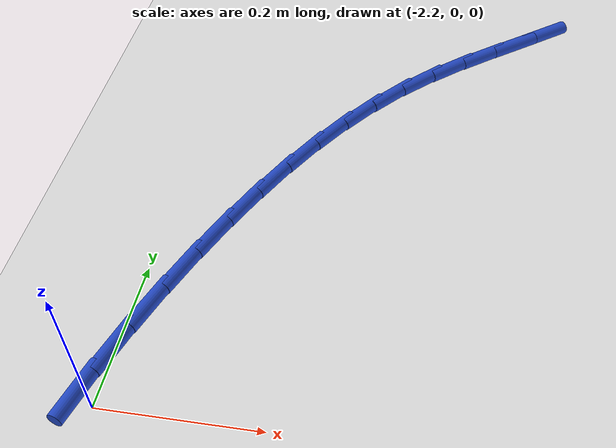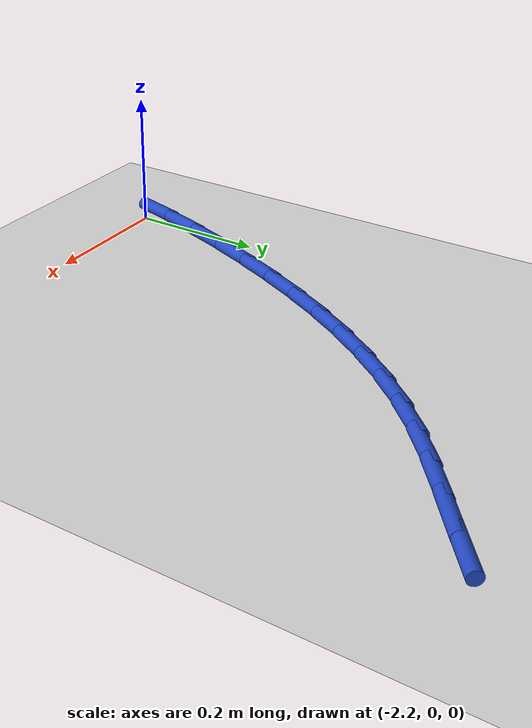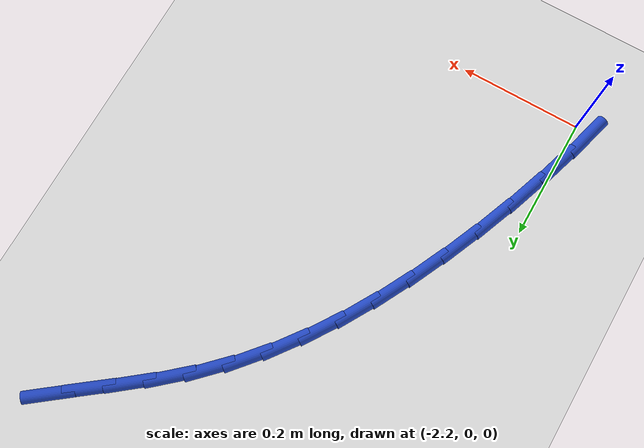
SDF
<sdf version="1.6">
 <world name="default">
  <model name="ground_plane">
   <static>1</static>
   <link name="link">
    <collision name="collision">
     <geometry><plane><normal>0 0 1</normal><size>100 100</size></plane></geometry>
     <surface><friction><ode><mu>100</mu><mu2>50</mu2></ode></friction></surface>
    </collision>
    <visual name="visual">
     <cast_shadows>0</cast_shadows>
     <geometry><plane><normal>0 0 1</normal><size>100 100</size></plane></geometry>
     <material>
      <script><uri>file://media/materials/scripts/gazebo.material</uri><name>Gazebo/WhiteGlow</name></script>
     </material>
    </visual>
   </link>
  </model>
  <model name="line">
   <link name="link_43">
    <pose>-1.7065425137575885 0.7666243332692769 0.01 0 1.57 0.6579530290019149</pose>
    <collision name="collision">
     <geometry><cylinder><radius>0.01</radius><length>0.08</length></cylinder></geometry>
    </collision>
    <visual name="visual">
     <material>
      <script><name>Gazebo/Blue</name><uri>file://media/materials/scripts/gazebo.material</uri></script>
     </material>
     <geometry><cylinder><radius>0.01</radius><length>0.08</length></cylinder></geometry>
    </visual>
   </link>
   <link name="link_44">
    <pose>-1.754684544902266 0.7294187191742951 0.01 0 1.57 0.6521233925615155</pose>
    <collision name="collision">
     <geometry><cylinder><radius>0.01</radius><length>0.08</length></cylinder></geometry>
    </collision>
    <visual name="visual">
     <material>
      <script><name>Gazebo/Blue</name><uri>file://media/materials/scripts/gazebo.material</uri></script>
     </material>
     <geometry><cylinder><radius>0.01</radius><length>0.08</length></cylinder></geometry>
    </visual>
   </link>
   <link name="link_45">
    <pose>-1.8025406759296592 0.6928776752427382 0.01 0 1.57 0.6726312284194701</pose>
    <collision name="collision">
     <geometry><cylinder><radius>0.01</radius><length>0.08</length></cylinder></geometry>
    </collision>
    <visual name="visual">
     <material>
      <script><name>Gazebo/Blue</name><uri>file://media/materials/scripts/gazebo.material</uri></script>
     </material>
     <geometry><cylinder><radius>0.01</radius><length>0.08</length></cylinder></geometry>
    </visual>
   </link>
   <link name="link_46">
    <pose>-1.8491469057150094 0.6557536742734777 0.01 0 1.57 0.7202469489337686</pose>
    <collision name="collision">
     <geometry><cylinder><radius>0.01</radius><length>0.08</length></cylinder></geometry>
    </collision>
    <visual name="visual">
     <material>
      <script><name>Gazebo/Blue</name><uri>file://media/materials/scripts/gazebo.material</uri></script>
     </material>
     <geometry><cylinder><radius>0.01</radius><length>0.08</length></cylinder></geometry>
    </visual>
   </link>
   <link name="link_47">
    <pose>-1.8935392331335599 0.6167991890653833 0.01 0 1.57 0.7916986334026075</pose>
    <collision name="collision">
     <geometry><cylinder><radius>0.01</radius><length>0.08</length></cylinder></geometry>
    </collision>
    <visual name="visual">
     <material>
      <script><name>Gazebo/Blue</name><uri>file://media/materials/scripts/gazebo.material</uri></script>
     </material>
     <geometry><cylinder><radius>0.01</radius><length>0.08</length></cylinder></geometry>
    </visual>
   </link>
   <link name="link_48">
    <pose>-1.9348918967933564 0.5749221321085269 0.01 0 1.57 0.8654980005632144</pose>
    <collision name="collision">
     <geometry><cylinder><radius>0.01</radius><length>0.08</length></cylinder></geometry>
    </collision>
    <visual name="visual">
     <material>
      <script><name>Gazebo/Blue</name><uri>file://media/materials/scripts/gazebo.material</uri></script>
     </material>
     <geometry><cylinder><radius>0.01</radius><length>0.08</length></cylinder></geometry>
    </visual>
   </link>
   <link name="link_49">
    <pose>-1.973188579869123 0.5299405725529952 0.01 0 1.57 0.9331305274758328</pose>
    <collision name="collision">
     <geometry><cylinder><radius>0.01</radius><length>0.08</length></cylinder></geometry>
    </collision>
    <visual name="visual">
     <material>
      <script><name>Gazebo/Blue</name><uri>file://media/materials/scripts/gazebo.material</uri></script>
     </material>
     <geometry><cylinder><radius>0.01</radius><length>0.08</length></cylinder></geometry>
    </visual>
   </link>
   <link name="link_50">
    <pose>-2.008706690728541 0.4820028503933334 0.01 0 1.57 0.9939632885952503</pose>
    <collision name="collision">
     <geometry><cylinder><radius>0.01</radius><length>0.08</length></cylinder></geometry>
    </collision>
    <visual name="visual">
     <material>
      <script><name>Gazebo/Blue</name><uri>file://media/materials/scripts/gazebo.material</uri></script>
     </material>
     <geometry><cylinder><radius>0.01</radius><length>0.08</length></cylinder></geometry>
    </visual>
   </link>
   <link name="link_51">
    <pose>-2.041724050499989 0.43125776974098673 0.01 0 1.57 1.047733821796634</pose>
    <collision name="collision">
     <geometry><cylinder><radius>0.01</radius><length>0.08</length></cylinder></geometry>
    </collision>
    <visual name="visual">
     <material>
      <script><name>Gazebo/Blue</name><uri>file://media/materials/scripts/gazebo.material</uri></script>
     </material>
     <geometry><cylinder><radius>0.01</radius><length>0.08</length></cylinder></geometry>
    </visual>
   </link>
   <link name="link_52">
    <pose>-2.0725184803118517 0.37785413470740076 0.01 0 1.57 1.0944588512466098</pose>
    <collision name="collision">
     <geometry><cylinder><radius>0.01</radius><length>0.08</length></cylinder></geometry>
    </collision>
    <visual name="visual">
     <material>
      <script><name>Gazebo/Blue</name><uri>file://media/materials/scripts/gazebo.material</uri></script>
     </material>
     <geometry><cylinder><radius>0.01</radius><length>0.08</length></cylinder></geometry>
    </visual>
   </link>
   <link name="link_53">
    <pose>-2.101367801292509 0.32194074940402145 0.01 0 1.57 1.1343475050006455</pose>
    <collision name="collision">
     <geometry><cylinder><radius>0.01</radius><length>0.08</length></cylinder></geometry>
    </collision>
    <visual name="visual">
     <material>
      <script><name>Gazebo/Blue</name><uri>file://media/materials/scripts/gazebo.material</uri></script>
     </material>
     <geometry><cylinder><radius>0.01</radius><length>0.08</length></cylinder></geometry>
    </visual>
   </link>
   <link name="link_54">
    <pose>-2.1285498345703444 0.26366641794229373 0.01 0 1.57 1.1684352216661016</pose>
    <collision name="collision">
     <geometry><cylinder><radius>0.01</radius><length>0.08</length></cylinder></geometry>
    </collision>
    <visual name="visual">
     <material>
      <script><name>Gazebo/Blue</name><uri>file://media/materials/scripts/gazebo.material</uri></script>
     </material>
     <geometry><cylinder><radius>0.01</radius><length>0.08</length></cylinder></geometry>
    </visual>
   </link>
   <link name="link_55">
    <pose>-2.1542810287630743 0.2032048254465902 0.01 0 1.57 1.2011148760876464</pose>
    <collision name="collision">
     <geometry><cylinder><radius>0.01</radius><length>0.08</length></cylinder></geometry>
    </collision>
    <visual name="visual">
     <material>
      <script><name>Gazebo/Blue</name><uri>file://media/materials/scripts/gazebo.material</uri></script>
     </material>
     <geometry><cylinder><radius>0.01</radius><length>0.08</length></cylinder></geometry>
    </visual>
   </link>
   <link name="link_56">
    <pose>-2.1784362994756856 0.14086811784747894 0.01 0 1.57 1.2342885972725148</pose>
    <collision name="collision">
     <geometry><cylinder><radius>0.01</radius><length>0.08</length></cylinder></geometry>
    </collision>
    <visual name="visual">
     <material>
      <script><name>Gazebo/Blue</name><uri>file://media/materials/scripts/gazebo.material</uri></script>
     </material>
     <geometry><cylinder><radius>0.01</radius><length>0.08</length></cylinder></geometry>
    </visual>
   </link>
   <link name="link_57">
    <pose>-2.2007724520384984 0.07701632412999249 0.01 0 1.57 1.2684847534732282</pose>
    <collision name="collision">
     <geometry><cylinder><radius>0.01</radius><length>0.08</length></cylinder></geometry>
    </collision>
    <visual name="visual">
     <material>
      <script><name>Gazebo/Blue</name><uri>file://media/materials/scripts/gazebo.material</uri></script>
     </material>
     <geometry><cylinder><radius>0.01</radius><length>0.08</length></cylinder></geometry>
    </visual>
   </link>
   <link name="link_58">
    <pose>-2.2210461783397704 0.012009519269678984 0.01 0 1.57 1.3042322281385</pose>
    <collision name="collision">
     <geometry><cylinder><radius>0.01</radius><length>0.08</length></cylinder></geometry>
    </collision>
    <visual name="visual">
     <material>
      <script><name>Gazebo/Blue</name><uri>file://media/materials/scripts/gazebo.material</uri></script>
     </material>
     <geometry><cylinder><radius>0.01</radius><length>0.08</length></cylinder></geometry>
    </visual>
   </link>
  </model>
 </world>
</sdf>
